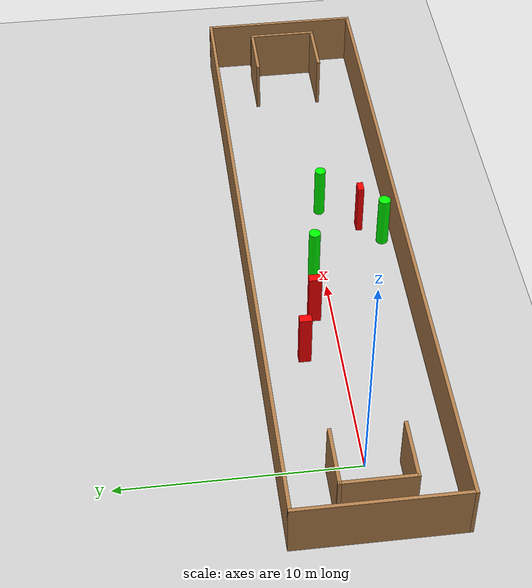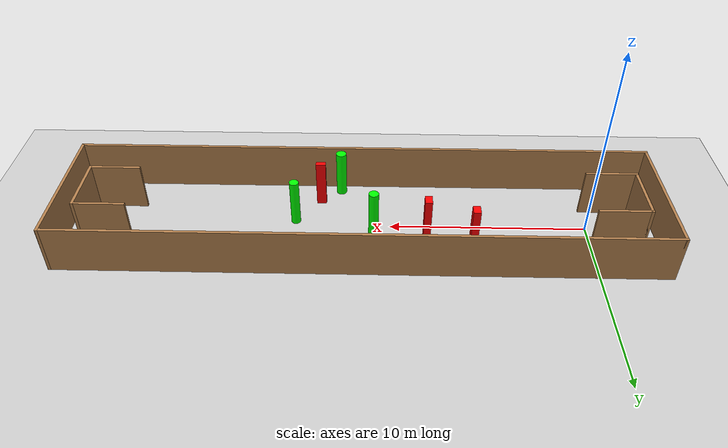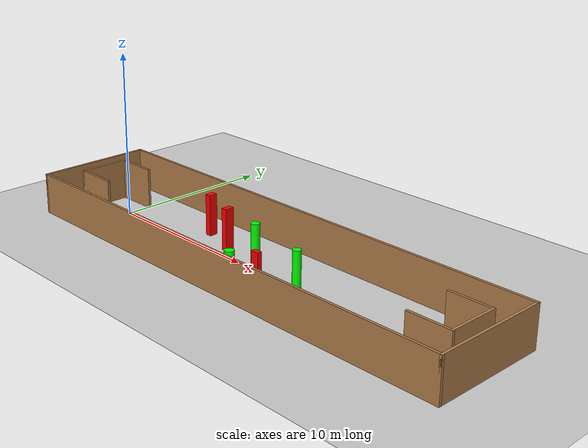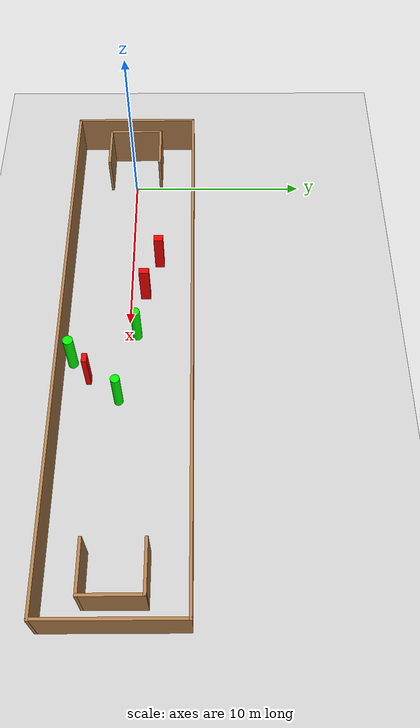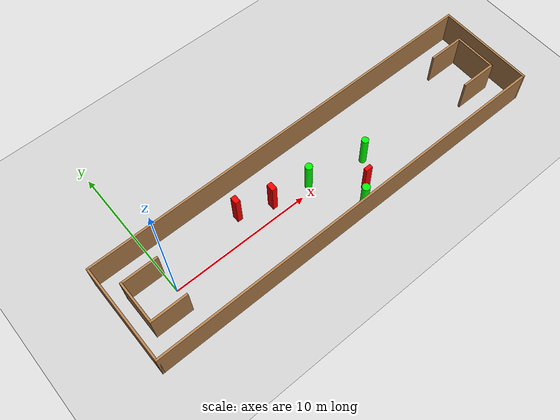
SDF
<sdf version="1.7">
 <world name="default">
  <light name="sun" type="directional">
   <pose>0 0 10 0 -0 0</pose>
   <diffuse>0.8 0.8 0.8 1</diffuse>
   <specular>0.2 0.2 0.2 1</specular>
   <attenuation>
    <range>1000</range>
    <constant>0.9</constant>
    <linear>0.01</linear>
    <quadratic>0.001</quadratic>
   </attenuation>
   <direction>-0.5 0.1 -0.9</direction>
   <spot><inner_angle>0</inner_angle><outer_angle>0</outer_angle><falloff>0</falloff></spot>
  </light>
  <model name="ground_plane">
   <static>1</static>
   <link name="link">
    <collision name="collision">
     <geometry><plane><normal>0 0 1</normal><size>100 100</size></plane></geometry>
     <surface>
      <contact><collide_bitmask>65535</collide_bitmask></contact>
      <friction><ode><mu>100</mu><mu2>50</mu2></ode></friction>
     </surface>
    </collision>
    <visual name="visual">
     <cast_shadows>0</cast_shadows>
     <geometry><plane><normal>0 0 1</normal><size>100 100</size></plane></geometry>
     <material>
      <script><uri>file://media/materials/scripts/gazebo.material</uri><name>Gazebo/Grey</name></script>
     </material>
    </visual>
   </link>
  </model>
  <gravity>0 0 -9.8</gravity>
  <magnetic_field>6e-06 2.3e-05 -4.2e-05</magnetic_field>
  <atmosphere type="adiabatic"/>
  <physics type="ode">
   <max_step_size>0.001</max_step_size>
   <real_time_factor>1</real_time_factor>
   <real_time_update_rate>1000</real_time_update_rate>
  </physics>
  <scene><ambient>0.4 0.4 0.4 1</ambient><background>0.7 0.7 0.7 1</background><shadows>1</shadows></scene>
  <spherical_coordinates>
   <surface_model>EARTH_WGS84</surface_model>
   <latitude_deg>0</latitude_deg>
   <longitude_deg>0</longitude_deg>
   <elevation>0</elevation>
   <heading_deg>0</heading_deg>
  </spherical_coordinates>
  <model name="my_base_walls">
   <link name="Wall_0">
    <collision name="Wall_0_Collision">
     <geometry><box><size>7.15 0.15 2.5</size></box></geometry>
     <pose>0 0 1.25 0 -0 0</pose>
    </collision>
    <visual name="Wall_0_Visual">
     <pose>0 0 1.25 0 -0 0</pose>
     <geometry><box><size>7.15 0.15 2.5</size></box></geometry>
     <material>
      <script><uri>file://media/materials/scripts/gazebo.material</uri><name>Gazebo/Wood</name></script>
      <ambient>1 1 1 1</ambient>
     </material>
     <meta><layer>0</layer></meta>
    </visual>
    <pose>-15 0 0 0 -0 1.5708</pose>
   </link>
   <link name="Wall_10">
    <collision name="Wall_10_Collision">
     <geometry><box><size>2.65 0.15 2.5</size></box></geometry>
     <pose>0 0 1.25 0 -0 0</pose>
    </collision>
    <visual name="Wall_10_Visual">
     <pose>0 0 1.25 0 -0 0</pose>
     <geometry><box><size>2.65 0.15 2.5</size></box></geometry>
     <material>
      <script><uri>file://media/materials/scripts/gazebo.material</uri><name>Gazebo/Wood</name></script>
      <ambient>1 1 1 1</ambient>
     </material>
     <meta><layer>0</layer></meta>
    </visual>
    <pose>-12.75 -1.5 0 0 -0 0</pose>
   </link>
   <link name="Wall_12">
    <collision name="Wall_12_Collision">
     <geometry><box><size>2.65 0.15 2.5</size></box></geometry>
     <pose>0 0 1.25 0 -0 0</pose>
    </collision>
    <visual name="Wall_12_Visual">
     <pose>0 0 1.25 0 -0 0</pose>
     <geometry><box><size>2.65 0.15 2.5</size></box></geometry>
     <material>
      <script><uri>file://media/materials/scripts/gazebo.material</uri><name>Gazebo/Wood</name></script>
      <ambient>1 1 1 1</ambient>
     </material>
     <meta><layer>0</layer></meta>
    </visual>
    <pose>-12.75 1.5 0 0 -0 0</pose>
   </link>
   <link name="Wall_14">
    <collision name="Wall_14_Collision">
     <geometry><box><size>3.15 0.15 2.5</size></box></geometry>
     <pose>0 0 1.25 0 -0 0</pose>
    </collision>
    <visual name="Wall_14_Visual">
     <pose>0 0 1.25 0 -0 0</pose>
     <geometry><box><size>3.15 0.15 2.5</size></box></geometry>
     <material>
      <script><uri>file://media/materials/scripts/gazebo.material</uri><name>Gazebo/Wood</name></script>
      <ambient>1 1 1 1</ambient>
     </material>
     <meta><layer>0</layer></meta>
    </visual>
    <pose>14 0 0 0 -0 -1.5708</pose>
   </link>
   <link name="Wall_15">
    <collision name="Wall_15_Collision">
     <geometry><box><size>2.65 0.15 2.5</size></box></geometry>
     <pose>0 0 1.25 0 -0 0</pose>
    </collision>
    <visual name="Wall_15_Visual">
     <pose>0 0 1.25 0 -0 0</pose>
     <geometry><box><size>2.65 0.15 2.5</size></box></geometry>
     <material>
      <script><uri>file://media/materials/scripts/gazebo.material</uri><name>Gazebo/Wood</name></script>
      <ambient>1 1 1 1</ambient>
     </material>
     <meta><layer>0</layer></meta>
    </visual>
    <pose>12.75 -1.5 0 0 -0 3.14159</pose>
   </link>
   <link name="Wall_17">
    <collision name="Wall_17_Collision">
     <geometry><box><size>2.65 0.15 2.5</size></box></geometry>
     <pose>0 0 1.25 0 -0 0</pose>
    </collision>
    <visual name="Wall_17_Visual">
     <pose>0 0 1.25 0 -0 0</pose>
     <geometry><box><size>2.65 0.15 2.5</size></box></geometry>
     <material>
      <script><uri>file://media/materials/scripts/gazebo.material</uri><name>Gazebo/Wood</name></script>
      <ambient>1 1 1 1</ambient>
     </material>
     <meta><layer>0</layer></meta>
    </visual>
    <pose>12.75 1.5 0 0 -0 3.14159</pose>
   </link>
   <link name="Wall_2">
    <collision name="Wall_2_Collision">
     <geometry><box><size>30.15 0.15 2.5</size></box></geometry>
     <pose>0 0 1.25 0 -0 0</pose>
    </collision>
    <visual name="Wall_2_Visual">
     <pose>0 0 1.25 0 -0 0</pose>
     <geometry><box><size>30.15 0.15 2.5</size></box></geometry>
     <material>
      <script><uri>file://media/materials/scripts/gazebo.material</uri><name>Gazebo/Wood</name></script>
      <ambient>1 1 1 1</ambient>
     </material>
     <meta><layer>0</layer></meta>
    </visual>
    <pose>-0 -3.5 0 0 -0 0</pose>
   </link>
   <link name="Wall_4">
    <collision name="Wall_4_Collision">
     <geometry><box><size>30.15 0.15 2.5</size></box></geometry>
     <pose>0 0 1.25 0 -0 0</pose>
    </collision>
    <visual name="Wall_4_Visual">
     <pose>0 0 1.25 0 -0 0</pose>
     <geometry><box><size>30.15 0.15 2.5</size></box></geometry>
     <material>
      <script><uri>file://media/materials/scripts/gazebo.material</uri><name>Gazebo/Wood</name></script>
      <ambient>1 1 1 1</ambient>
     </material>
     <meta><layer>0</layer></meta>
    </visual>
    <pose>-0 3.5 0 0 -0 0</pose>
   </link>
   <link name="Wall_6">
    <collision name="Wall_6_Collision">
     <geometry><box><size>7.15 0.15 2.5</size></box></geometry>
     <pose>0 0 1.25 0 -0 0</pose>
    </collision>
    <visual name="Wall_6_Visual">
     <pose>0 0 1.25 0 -0 0</pose>
     <geometry><box><size>7.15 0.15 2.5</size></box></geometry>
     <material>
      <script><uri>file://media/materials/scripts/gazebo.material</uri><name>Gazebo/Wood</name></script>
      <ambient>1 1 1 1</ambient>
     </material>
     <meta><layer>0</layer></meta>
    </visual>
    <pose>15 0 0 0 -0 -1.5708</pose>
   </link>
   <link name="Wall_9">
    <collision name="Wall_9_Collision">
     <geometry><box><size>3.15 0.15 2.5</size></box></geometry>
     <pose>0 0 1.25 0 -0 0</pose>
    </collision>
    <visual name="Wall_9_Visual">
     <pose>0 0 1.25 0 -0 0</pose>
     <geometry><box><size>3.15 0.15 2.5</size></box></geometry>
     <material>
      <script><uri>file://media/materials/scripts/gazebo.material</uri><name>Gazebo/Wood</name></script>
      <ambient>1 1 1 1</ambient>
     </material>
     <meta><layer>0</layer></meta>
    </visual>
    <pose>-14 0 0 0 -0 -1.5708</pose>
   </link>
   <static>1</static>
   <pose>11.5 0 0 0 -0 0</pose>
  </model>
  <model name="cylinder1">
   <static>1</static>
   <link name="link">
    <inertial>
     <mass>1</mass>
     <inertia><ixx>0.5</ixx><ixy>0</ixy><ixz>0</ixz><iyy>0.5</iyy><iyz>0</iyz><izz>1</izz></inertia>
    </inertial>
    <collision name="collision">
     <geometry><cylinder><radius>0.24115736244678249</radius><length>2.5</length></cylinder></geometry>
    </collision>
    <visual name="visual">
     <geometry><cylinder><radius>0.24115736244678249</radius><length>2.5</length></cylinder></geometry>
     <material>
      <ambient>0 1 0 1</ambient>
      <diffuse>0 1 0 1</diffuse>
      <specular>0.1 0.1 0.1 1</specular>
      <emissive>0 0 0 0</emissive>
     </material>
    </visual>
   </link>
   <pose>14.889157660146365 -0.38414471424247676 1.25 0 0 0</pose>
  </model>
  <model name="cylinder2">
   <static>1</static>
   <link name="link">
    <inertial>
     <mass>1</mass>
     <inertia><ixx>0.5</ixx><ixy>0</ixy><ixz>0</ixz><iyy>0.5</iyy><iyz>0</iyz><izz>1</izz></inertia>
    </inertial>
    <collision name="collision">
     <geometry><cylinder><radius>0.25415151517878093</radius><length>2.5</length></cylinder></geometry>
    </collision>
    <visual name="visual">
     <geometry><cylinder><radius>0.25415151517878093</radius><length>2.5</length></cylinder></geometry>
     <material>
      <ambient>0 1 0 1</ambient>
      <diffuse>0 1 0 1</diffuse>
      <specular>0.1 0.1 0.1 1</specular>
      <emissive>0 0 0 0</emissive>
     </material>
    </visual>
   </link>
   <pose>10.86180286331286 0.4549180828518411 1.25 0 0 0</pose>
  </model>
  <model name="cylinder3">
   <static>1</static>
   <link name="link">
    <inertial>
     <mass>1</mass>
     <inertia><ixx>0.5</ixx><ixy>0</ixy><ixz>0</ixz><iyy>0.5</iyy><iyz>0</iyz><izz>1</izz></inertia>
    </inertial>
    <collision name="collision">
     <geometry><cylinder><radius>0.26889579922979495</radius><length>2.5</length></cylinder></geometry>
    </collision>
    <visual name="visual">
     <geometry><cylinder><radius>0.26889579922979495</radius><length>2.5</length></cylinder></geometry>
     <material>
      <ambient>0 1 0 1</ambient>
      <diffuse>0 1 0 1</diffuse>
      <specular>0.1 0.1 0.1 1</specular>
      <emissive>0 0 0 0</emissive>
     </material>
    </visual>
   </link>
   <pose>12.613691146056846 -2.9539256205222166 1.25 0 0 0</pose>
  </model>
  <model name="box1">
   <static>1</static>
   <link name="link">
    <inertial>
     <mass>1</mass>
     <inertia><ixx>0.083</ixx><ixy>0</ixy><ixz>0</ixz><iyy>0.083</iyy><iyz>0</iyz><izz>0.083</izz></inertia>
    </inertial>
    <collision name="collision">
     <geometry><box><size>0.5015856442999683 0.27264841363832504 2.5</size></box></geometry>
    </collision>
    <visual name="visual">
     <geometry><box><size>0.5015856442999683 0.27264841363832504 2.5</size></box></geometry>
     <material>
      <ambient>1 0 0 1</ambient>
      <diffuse>1 0 0 1</diffuse>
      <specular>0.1 0.1 0.1 1</specular>
      <emissive>0 0 0 0</emissive>
     </material>
    </visual>
    <sensor name="my_contact" type="contact">
     <contact><collision>box_collision</collision><topic>__default_topic__</topic></contact>
    </sensor>
   </link>
   <pose>13.640220995539714 -2.0289222635850495 1.25 0 0 0</pose>
  </model>
  <model name="box2">
   <static>1</static>
   <link name="link">
    <inertial>
     <mass>1</mass>
     <inertia><ixx>0.083</ixx><ixy>0</ixy><ixz>0</ixz><iyy>0.083</iyy><iyz>0</iyz><izz>0.083</izz></inertia>
    </inertial>
    <collision name="collision">
     <geometry><box><size>0.36252651435111927 0.5517547167659587 2.5</size></box></geometry>
    </collision>
    <visual name="visual">
     <geometry><box><size>0.36252651435111927 0.5517547167659587 2.5</size></box></geometry>
     <material>
      <ambient>1 0 0 1</ambient>
      <diffuse>1 0 0 1</diffuse>
      <specular>0.1 0.1 0.1 1</specular>
      <emissive>0 0 0 0</emissive>
     </material>
    </visual>
    <sensor name="my_contact" type="contact">
     <contact><collision>box_collision</collision><topic>__default_topic__</topic></contact>
    </sensor>
   </link>
   <pose>8.1712899399193 0.8365376416625496 1.25 0 0 0</pose>
  </model>
  <model name="box3">
   <static>1</static>
   <link name="link">
    <inertial>
     <mass>1</mass>
     <inertia><ixx>0.083</ixx><ixy>0</ixy><ixz>0</ixz><iyy>0.083</iyy><iyz>0</iyz><izz>0.083</izz></inertia>
    </inertial>
    <collision name="collision">
     <geometry><box><size>0.3687964696251187 0.5215195656353778 2.5</size></box></geometry>
    </collision>
    <visual name="visual">
     <geometry><box><size>0.3687964696251187 0.5215195656353778 2.5</size></box></geometry>
     <material>
      <ambient>1 0 0 1</ambient>
      <diffuse>1 0 0 1</diffuse>
      <specular>0.1 0.1 0.1 1</specular>
      <emissive>0 0 0 0</emissive>
     </material>
    </visual>
    <sensor name="my_contact" type="contact">
     <contact><collision>box_collision</collision><topic>__default_topic__</topic></contact>
    </sensor>
   </link>
   <pose>5.894915402161891 1.573592818942477 1.25 0 0 0</pose>
  </model>
 </world>
</sdf>
